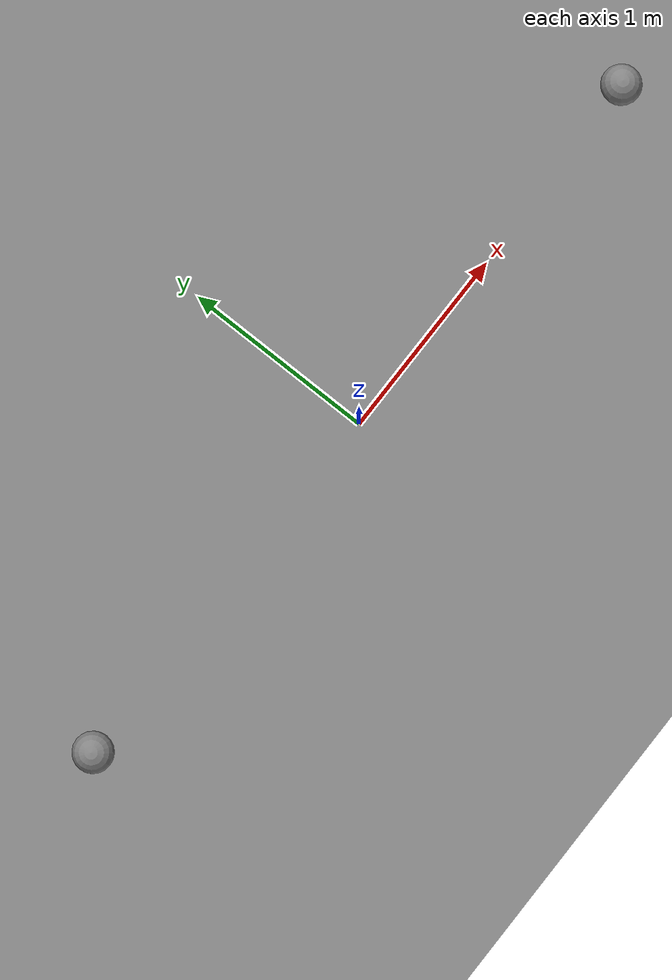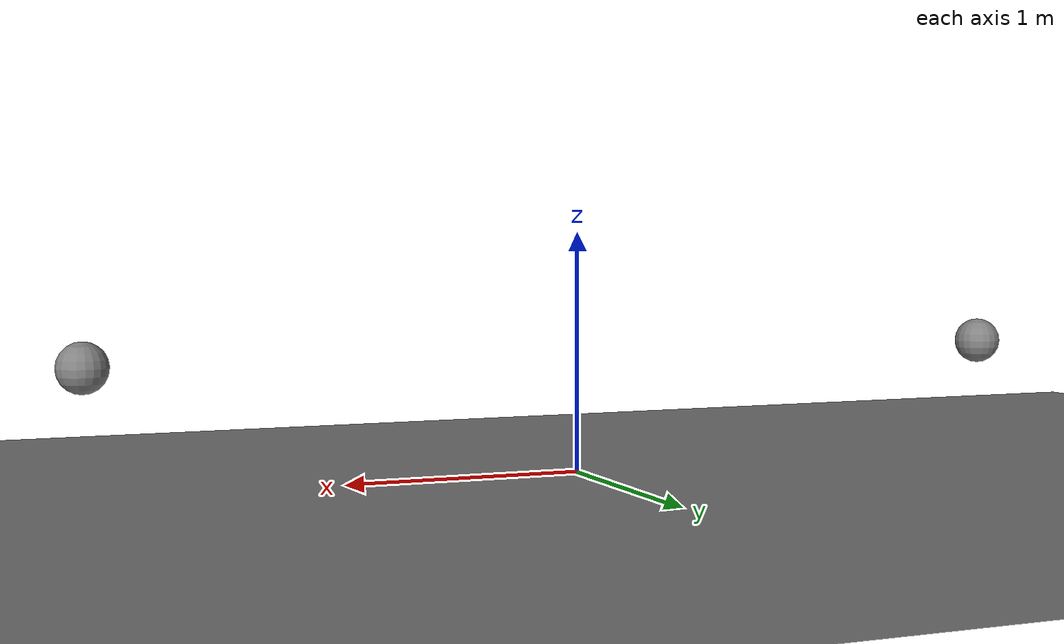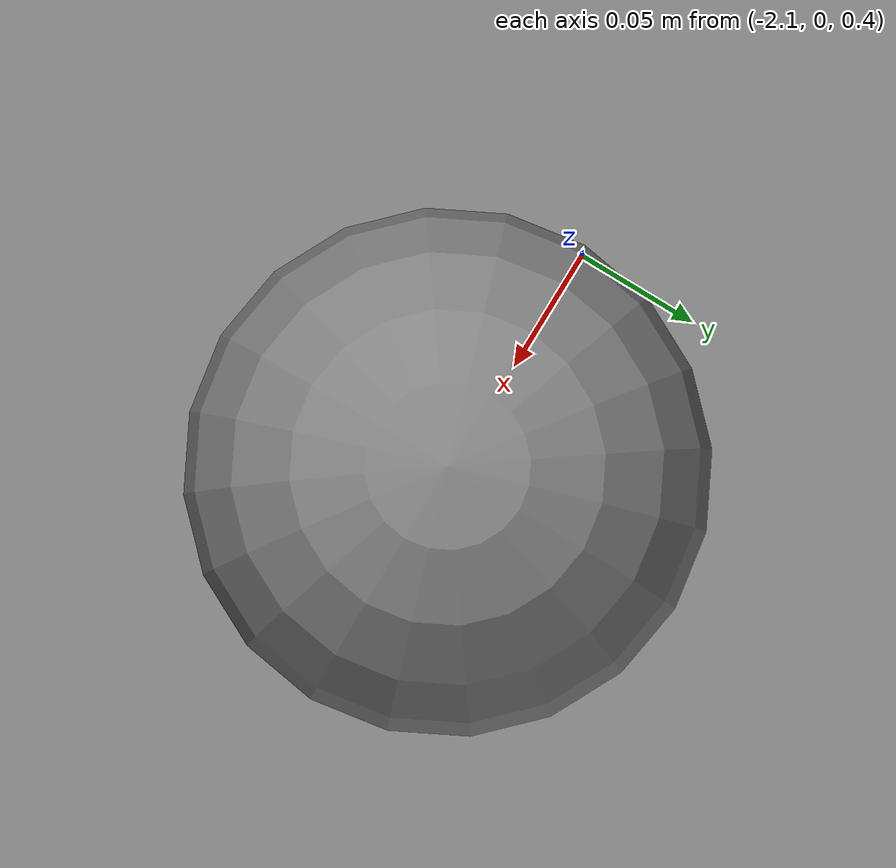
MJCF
<mujoco model="island_equivalence">
        <option gravity="0 0 -9.81" timestep="0.002">
            <flag sleep="enable"/>
        </option>
        <worldbody>
            <geom type="plane" size="10 10 0.1" solref="0.005 1.5"/>
            <body name="ball_a" pos="-2 0 0.5">
                <freejoint name="a_free"/>
                <geom type="sphere" size="0.1" mass="1.0" solref="0.005 1.5"/>
            </body>
            <body name="ball_b" pos="2 0 0.5">
                <freejoint name="b_free"/>
                <geom type="sphere" size="0.1" mass="1.0" solref="0.005 1.5"/>
            </body>
        </worldbody>
    </mujoco>
